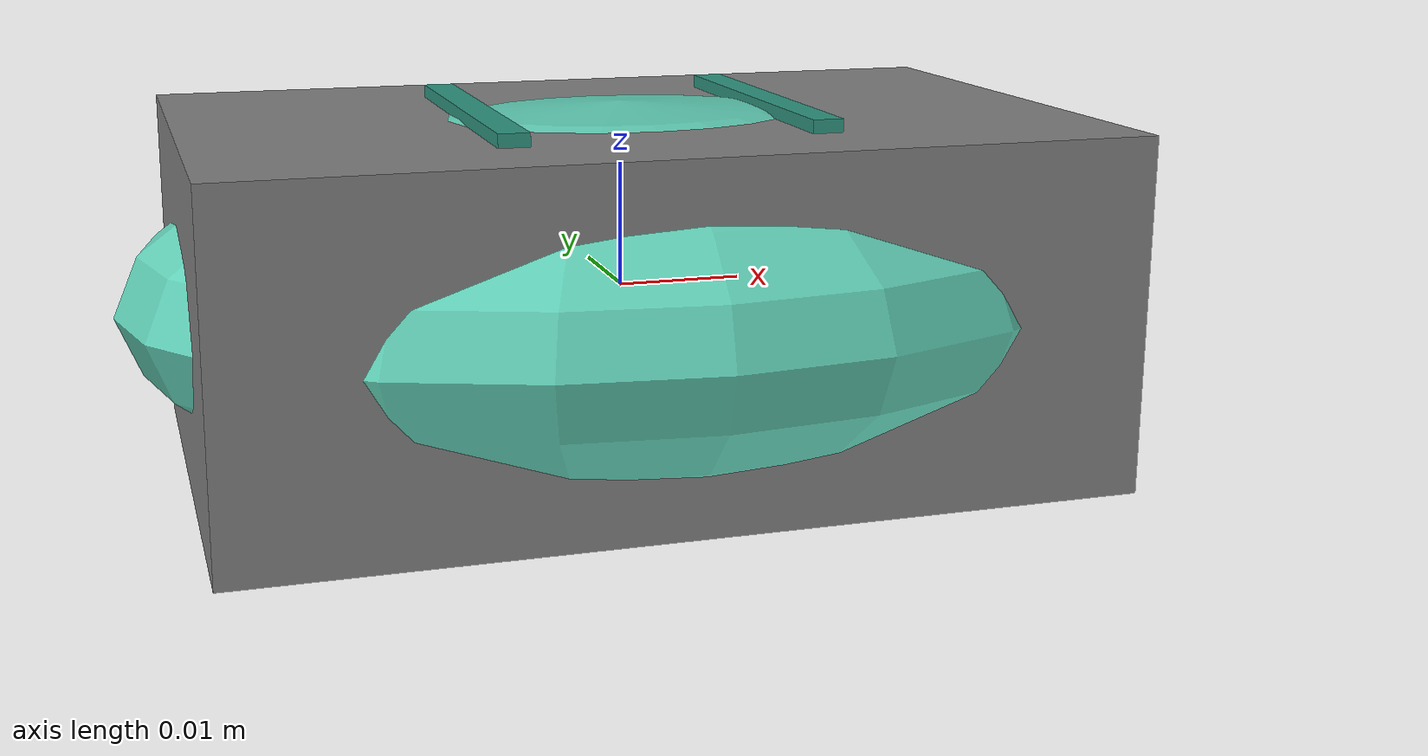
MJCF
<mujoco model="vla82_vla82_056">
  <compiler angle="radian"/>
  <asset>
    <texture name="source_texture" type="2d" file="source_texture.png"/>
    <material name="source_material" texture="source_texture" rgba="1 1 1 1"/>
  </asset>
  <default>
    <default class="visual"><geom contype="0" conaffinity="0" group="1"/></default>
    <default class="collision"><geom contype="1" conaffinity="1" group="0" density="300" friction="0.55 0.005 0.0002" solref="0.02 1" solimp="0.9 0.95 0.001"/></default>
    <default class="region"><geom contype="0" conaffinity="0" group="1" rgba="0 1 0 0" mass="0"/></default>
  </default>
  <worldbody><body><body name="object">
    <geom name="soap_body" class="visual" mass="0" type="ellipsoid" size="0.040000 0.028000 0.015000" rgba="0.38 0.82 0.72 1"/>
    <geom name="soap_inset" class="visual" mass="0" type="ellipsoid" pos="0 0 0.007200" size="0.024800 0.016240 0.005100" rgba="0.72 0.95 0.88 1"/>
    <geom name="soap_groove_left" class="visual" mass="0" type="box" pos="-0.012000 0 0.014000" size="0.0012 0.014000 0.001" rgba="0.18 0.58 0.50 1"/>
    <geom name="soap_groove_right" class="visual" mass="0" type="box" pos="0.012000 0 0.014000" size="0.0012 0.014000 0.001" rgba="0.18 0.58 0.50 1"/>
    <geom name="collision" class="collision" type="box" size="0.035000 0.022000 0.013950" mass="0.080"/>
    <geom name="reg_bbox" class="region" type="box" pos="0 0 0" size="0.040000 0.028000 0.015000"/>
  </body></body></worldbody>
  <actuator/>
</mujoco>
